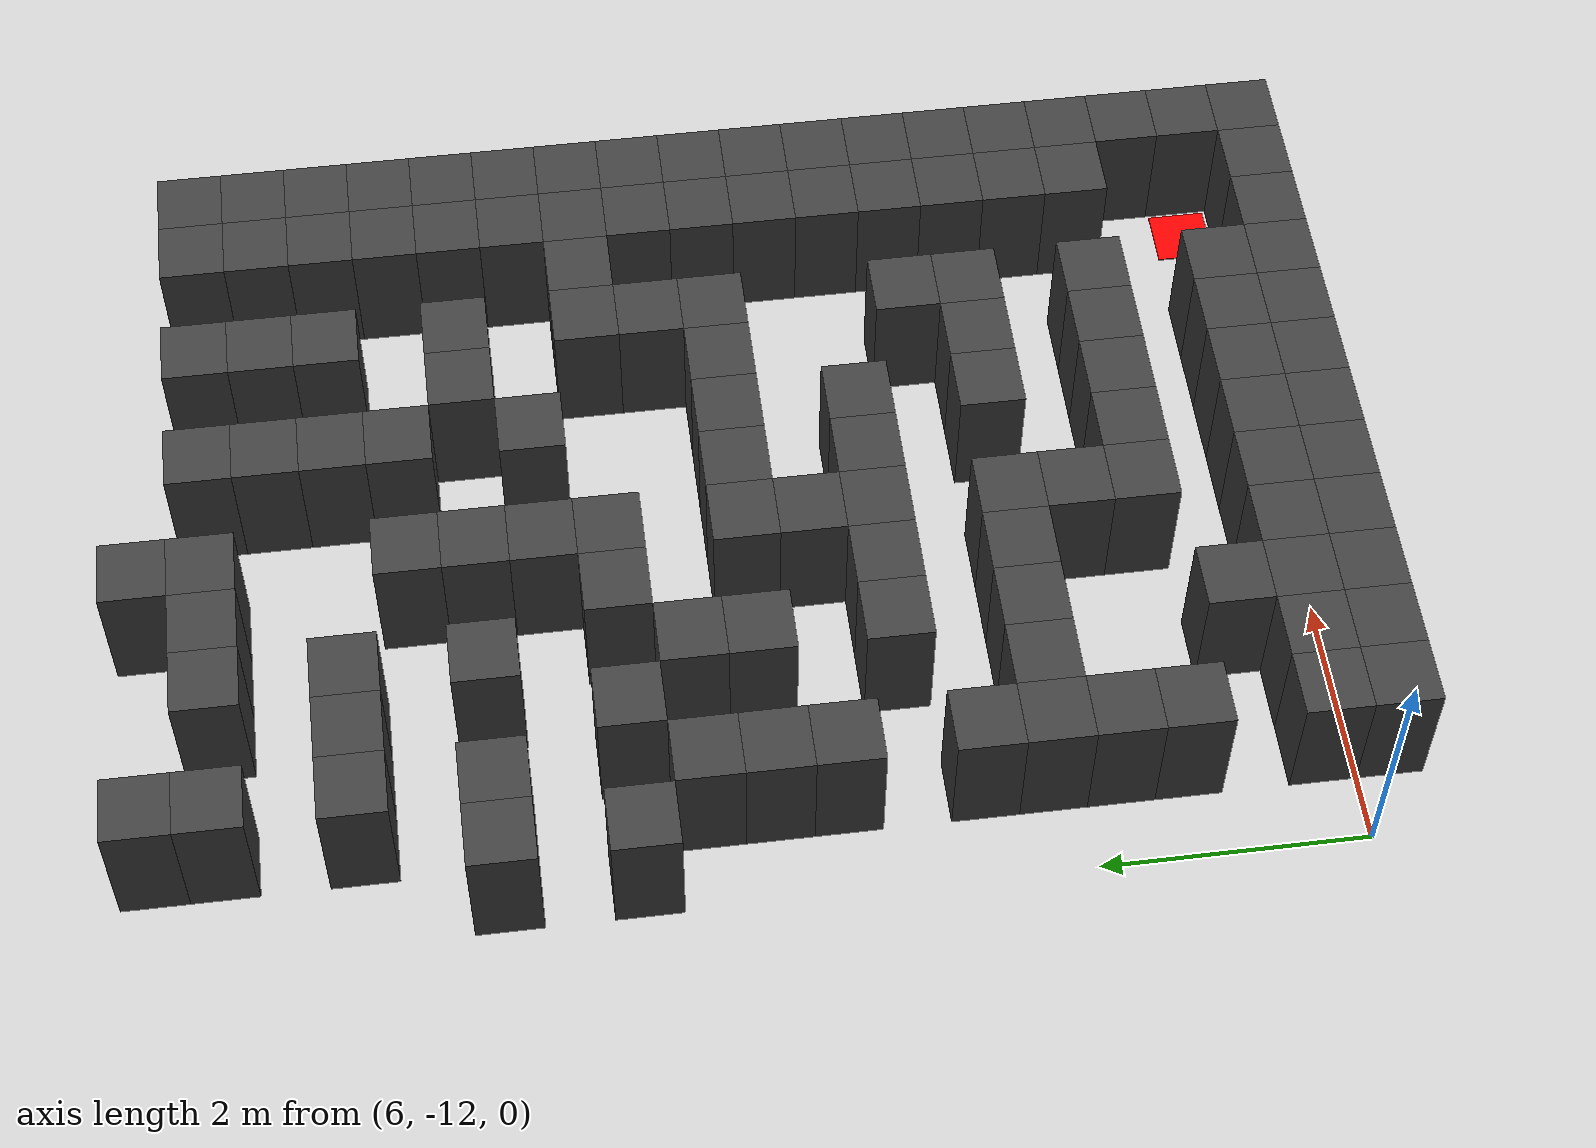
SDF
<sdf version="1.7">
 <world name="map_15497">
  <model name="ground_plane">
   <static>true</static>
   <link name="link">
    <collision name="collision">
     <geometry><plane><normal>0 0 1</normal><size>200 200</size></plane></geometry>
    </collision>
    <visual name="visual">
     <geometry><plane><normal>0 0 1</normal><size>200 200</size></plane></geometry>
     <material><ambient>0.8 0.8 0.8 1</ambient><diffuse>0.8 0.8 0.8 1</diffuse></material>
    </visual>
   </link>
  </model>
  <model name="maze_environment">
   <static>true</static>
   <link name="wall_745">
    <pose>6.750 -3.250 0.500 0 0 0</pose>
    <collision name="col"><geometry><box><size>0.5 0.5 1.0</size></box></geometry></collision>
    <visual name="vis">
     <geometry><box><size>0.5 0.5 1.0</size></box></geometry>
     <material><ambient>0.15 0.15 0.15 1</ambient><diffuse>0.25 0.25 0.25 1</diffuse></material>
    </visual>
   </link>
   <link name="wall_746">
    <pose>8.750 -3.250 0.500 0 0 0</pose>
    <collision name="col"><geometry><box><size>0.5 0.5 1.0</size></box></geometry></collision>
    <visual name="vis">
     <geometry><box><size>0.5 0.5 1.0</size></box></geometry>
     <material><ambient>0.15 0.15 0.15 1</ambient><diffuse>0.25 0.25 0.25 1</diffuse></material>
    </visual>
   </link>
   <link name="wall_774">
    <pose>6.750 -3.750 0.500 0 0 0</pose>
    <collision name="col"><geometry><box><size>0.5 0.5 1.0</size></box></geometry></collision>
    <visual name="vis">
     <geometry><box><size>0.5 0.5 1.0</size></box></geometry>
     <material><ambient>0.15 0.15 0.15 1</ambient><diffuse>0.25 0.25 0.25 1</diffuse></material>
    </visual>
   </link>
   <link name="wall_775">
    <pose>7.750 -3.750 0.500 0 0 0</pose>
    <collision name="col"><geometry><box><size>0.5 0.5 1.0</size></box></geometry></collision>
    <visual name="vis">
     <geometry><box><size>0.5 0.5 1.0</size></box></geometry>
     <material><ambient>0.15 0.15 0.15 1</ambient><diffuse>0.25 0.25 0.25 1</diffuse></material>
    </visual>
   </link>
   <link name="wall_776">
    <pose>8.250 -3.750 0.500 0 0 0</pose>
    <collision name="col"><geometry><box><size>0.5 0.5 1.0</size></box></geometry></collision>
    <visual name="vis">
     <geometry><box><size>0.5 0.5 1.0</size></box></geometry>
     <material><ambient>0.15 0.15 0.15 1</ambient><diffuse>0.25 0.25 0.25 1</diffuse></material>
    </visual>
   </link>
   <link name="wall_777">
    <pose>8.750 -3.750 0.500 0 0 0</pose>
    <collision name="col"><geometry><box><size>0.5 0.5 1.0</size></box></geometry></collision>
    <visual name="vis">
     <geometry><box><size>0.5 0.5 1.0</size></box></geometry>
     <material><ambient>0.15 0.15 0.15 1</ambient><diffuse>0.25 0.25 0.25 1</diffuse></material>
    </visual>
   </link>
   <link name="wall_778">
    <pose>9.750 -3.750 0.500 0 0 0</pose>
    <collision name="col"><geometry><box><size>0.5 0.5 1.0</size></box></geometry></collision>
    <visual name="vis">
     <geometry><box><size>0.5 0.5 1.0</size></box></geometry>
     <material><ambient>0.15 0.15 0.15 1</ambient><diffuse>0.25 0.25 0.25 1</diffuse></material>
    </visual>
   </link>
   <link name="wall_779">
    <pose>10.750 -3.750 0.500 0 0 0</pose>
    <collision name="col"><geometry><box><size>0.5 0.5 1.0</size></box></geometry></collision>
    <visual name="vis">
     <geometry><box><size>0.5 0.5 1.0</size></box></geometry>
     <material><ambient>0.15 0.15 0.15 1</ambient><diffuse>0.25 0.25 0.25 1</diffuse></material>
    </visual>
   </link>
   <link name="wall_780">
    <pose>11.750 -3.750 0.500 0 0 0</pose>
    <collision name="col"><geometry><box><size>0.5 0.5 1.0</size></box></geometry></collision>
    <visual name="vis">
     <geometry><box><size>0.5 0.5 1.0</size></box></geometry>
     <material><ambient>0.15 0.15 0.15 1</ambient><diffuse>0.25 0.25 0.25 1</diffuse></material>
    </visual>
   </link>
   <link name="wall_781">
    <pose>12.250 -3.750 0.500 0 0 0</pose>
    <collision name="col"><geometry><box><size>0.5 0.5 1.0</size></box></geometry></collision>
    <visual name="vis">
     <geometry><box><size>0.5 0.5 1.0</size></box></geometry>
     <material><ambient>0.15 0.15 0.15 1</ambient><diffuse>0.25 0.25 0.25 1</diffuse></material>
    </visual>
   </link>
   <link name="wall_791">
    <pose>9.750 -4.250 0.500 0 0 0</pose>
    <collision name="col"><geometry><box><size>0.5 0.5 1.0</size></box></geometry></collision>
    <visual name="vis">
     <geometry><box><size>0.5 0.5 1.0</size></box></geometry>
     <material><ambient>0.15 0.15 0.15 1</ambient><diffuse>0.25 0.25 0.25 1</diffuse></material>
    </visual>
   </link>
   <link name="wall_792">
    <pose>10.750 -4.250 0.500 0 0 0</pose>
    <collision name="col"><geometry><box><size>0.5 0.5 1.0</size></box></geometry></collision>
    <visual name="vis">
     <geometry><box><size>0.5 0.5 1.0</size></box></geometry>
     <material><ambient>0.15 0.15 0.15 1</ambient><diffuse>0.25 0.25 0.25 1</diffuse></material>
    </visual>
   </link>
   <link name="wall_793">
    <pose>11.750 -4.250 0.500 0 0 0</pose>
    <collision name="col"><geometry><box><size>0.5 0.5 1.0</size></box></geometry></collision>
    <visual name="vis">
     <geometry><box><size>0.5 0.5 1.0</size></box></geometry>
     <material><ambient>0.15 0.15 0.15 1</ambient><diffuse>0.25 0.25 0.25 1</diffuse></material>
    </visual>
   </link>
   <link name="wall_794">
    <pose>12.250 -4.250 0.500 0 0 0</pose>
    <collision name="col"><geometry><box><size>0.5 0.5 1.0</size></box></geometry></collision>
    <visual name="vis">
     <geometry><box><size>0.5 0.5 1.0</size></box></geometry>
     <material><ambient>0.15 0.15 0.15 1</ambient><diffuse>0.25 0.25 0.25 1</diffuse></material>
    </visual>
   </link>
   <link name="wall_819">
    <pose>6.750 -4.750 0.500 0 0 0</pose>
    <collision name="col"><geometry><box><size>0.5 0.5 1.0</size></box></geometry></collision>
    <visual name="vis">
     <geometry><box><size>0.5 0.5 1.0</size></box></geometry>
     <material><ambient>0.15 0.15 0.15 1</ambient><diffuse>0.25 0.25 0.25 1</diffuse></material>
    </visual>
   </link>
   <link name="wall_820">
    <pose>7.250 -4.750 0.500 0 0 0</pose>
    <collision name="col"><geometry><box><size>0.5 0.5 1.0</size></box></geometry></collision>
    <visual name="vis">
     <geometry><box><size>0.5 0.5 1.0</size></box></geometry>
     <material><ambient>0.15 0.15 0.15 1</ambient><diffuse>0.25 0.25 0.25 1</diffuse></material>
    </visual>
   </link>
   <link name="wall_821">
    <pose>7.750 -4.750 0.500 0 0 0</pose>
    <collision name="col"><geometry><box><size>0.5 0.5 1.0</size></box></geometry></collision>
    <visual name="vis">
     <geometry><box><size>0.5 0.5 1.0</size></box></geometry>
     <material><ambient>0.15 0.15 0.15 1</ambient><diffuse>0.25 0.25 0.25 1</diffuse></material>
    </visual>
   </link>
   <link name="wall_822">
    <pose>9.750 -4.750 0.500 0 0 0</pose>
    <collision name="col"><geometry><box><size>0.5 0.5 1.0</size></box></geometry></collision>
    <visual name="vis">
     <geometry><box><size>0.5 0.5 1.0</size></box></geometry>
     <material><ambient>0.15 0.15 0.15 1</ambient><diffuse>0.25 0.25 0.25 1</diffuse></material>
    </visual>
   </link>
   <link name="wall_823">
    <pose>10.750 -4.750 0.500 0 0 0</pose>
    <collision name="col"><geometry><box><size>0.5 0.5 1.0</size></box></geometry></collision>
    <visual name="vis">
     <geometry><box><size>0.5 0.5 1.0</size></box></geometry>
     <material><ambient>0.15 0.15 0.15 1</ambient><diffuse>0.25 0.25 0.25 1</diffuse></material>
    </visual>
   </link>
   <link name="wall_824">
    <pose>11.750 -4.750 0.500 0 0 0</pose>
    <collision name="col"><geometry><box><size>0.5 0.5 1.0</size></box></geometry></collision>
    <visual name="vis">
     <geometry><box><size>0.5 0.5 1.0</size></box></geometry>
     <material><ambient>0.15 0.15 0.15 1</ambient><diffuse>0.25 0.25 0.25 1</diffuse></material>
    </visual>
   </link>
   <link name="wall_825">
    <pose>12.250 -4.750 0.500 0 0 0</pose>
    <collision name="col"><geometry><box><size>0.5 0.5 1.0</size></box></geometry></collision>
    <visual name="vis">
     <geometry><box><size>0.5 0.5 1.0</size></box></geometry>
     <material><ambient>0.15 0.15 0.15 1</ambient><diffuse>0.25 0.25 0.25 1</diffuse></material>
    </visual>
   </link>
   <link name="wall_834">
    <pose>8.750 -5.250 0.500 0 0 0</pose>
    <collision name="col"><geometry><box><size>0.5 0.5 1.0</size></box></geometry></collision>
    <visual name="vis">
     <geometry><box><size>0.5 0.5 1.0</size></box></geometry>
     <material><ambient>0.15 0.15 0.15 1</ambient><diffuse>0.25 0.25 0.25 1</diffuse></material>
    </visual>
   </link>
   <link name="wall_835">
    <pose>9.750 -5.250 0.500 0 0 0</pose>
    <collision name="col"><geometry><box><size>0.5 0.5 1.0</size></box></geometry></collision>
    <visual name="vis">
     <geometry><box><size>0.5 0.5 1.0</size></box></geometry>
     <material><ambient>0.15 0.15 0.15 1</ambient><diffuse>0.25 0.25 0.25 1</diffuse></material>
    </visual>
   </link>
   <link name="wall_836">
    <pose>11.750 -5.250 0.500 0 0 0</pose>
    <collision name="col"><geometry><box><size>0.5 0.5 1.0</size></box></geometry></collision>
    <visual name="vis">
     <geometry><box><size>0.5 0.5 1.0</size></box></geometry>
     <material><ambient>0.15 0.15 0.15 1</ambient><diffuse>0.25 0.25 0.25 1</diffuse></material>
    </visual>
   </link>
   <link name="wall_837">
    <pose>12.250 -5.250 0.500 0 0 0</pose>
    <collision name="col"><geometry><box><size>0.5 0.5 1.0</size></box></geometry></collision>
    <visual name="vis">
     <geometry><box><size>0.5 0.5 1.0</size></box></geometry>
     <material><ambient>0.15 0.15 0.15 1</ambient><diffuse>0.25 0.25 0.25 1</diffuse></material>
    </visual>
   </link>
   <link name="wall_862">
    <pose>6.250 -5.750 0.500 0 0 0</pose>
    <collision name="col"><geometry><box><size>0.5 0.5 1.0</size></box></geometry></collision>
    <visual name="vis">
     <geometry><box><size>0.5 0.5 1.0</size></box></geometry>
     <material><ambient>0.15 0.15 0.15 1</ambient><diffuse>0.25 0.25 0.25 1</diffuse></material>
    </visual>
   </link>
   <link name="wall_863">
    <pose>6.750 -5.750 0.500 0 0 0</pose>
    <collision name="col"><geometry><box><size>0.5 0.5 1.0</size></box></geometry></collision>
    <visual name="vis">
     <geometry><box><size>0.5 0.5 1.0</size></box></geometry>
     <material><ambient>0.15 0.15 0.15 1</ambient><diffuse>0.25 0.25 0.25 1</diffuse></material>
    </visual>
   </link>
   <link name="wall_864">
    <pose>7.750 -5.750 0.500 0 0 0</pose>
    <collision name="col"><geometry><box><size>0.5 0.5 1.0</size></box></geometry></collision>
    <visual name="vis">
     <geometry><box><size>0.5 0.5 1.0</size></box></geometry>
     <material><ambient>0.15 0.15 0.15 1</ambient><diffuse>0.25 0.25 0.25 1</diffuse></material>
    </visual>
   </link>
   <link name="wall_865">
    <pose>8.750 -5.750 0.500 0 0 0</pose>
    <collision name="col"><geometry><box><size>0.5 0.5 1.0</size></box></geometry></collision>
    <visual name="vis">
     <geometry><box><size>0.5 0.5 1.0</size></box></geometry>
     <material><ambient>0.15 0.15 0.15 1</ambient><diffuse>0.25 0.25 0.25 1</diffuse></material>
    </visual>
   </link>
   <link name="wall_866">
    <pose>10.250 -5.750 0.500 0 0 0</pose>
    <collision name="col"><geometry><box><size>0.5 0.5 1.0</size></box></geometry></collision>
    <visual name="vis">
     <geometry><box><size>0.5 0.5 1.0</size></box></geometry>
     <material><ambient>0.15 0.15 0.15 1</ambient><diffuse>0.25 0.25 0.25 1</diffuse></material>
    </visual>
   </link>
   <link name="wall_867">
    <pose>10.750 -5.750 0.500 0 0 0</pose>
    <collision name="col"><geometry><box><size>0.5 0.5 1.0</size></box></geometry></collision>
    <visual name="vis">
     <geometry><box><size>0.5 0.5 1.0</size></box></geometry>
     <material><ambient>0.15 0.15 0.15 1</ambient><diffuse>0.25 0.25 0.25 1</diffuse></material>
    </visual>
   </link>
   <link name="wall_868">
    <pose>11.750 -5.750 0.500 0 0 0</pose>
    <collision name="col"><geometry><box><size>0.5 0.5 1.0</size></box></geometry></collision>
    <visual name="vis">
     <geometry><box><size>0.5 0.5 1.0</size></box></geometry>
     <material><ambient>0.15 0.15 0.15 1</ambient><diffuse>0.25 0.25 0.25 1</diffuse></material>
    </visual>
   </link>
   <link name="wall_869">
    <pose>12.250 -5.750 0.500 0 0 0</pose>
    <collision name="col"><geometry><box><size>0.5 0.5 1.0</size></box></geometry></collision>
    <visual name="vis">
     <geometry><box><size>0.5 0.5 1.0</size></box></geometry>
     <material><ambient>0.15 0.15 0.15 1</ambient><diffuse>0.25 0.25 0.25 1</diffuse></material>
    </visual>
   </link>
   <link name="wall_880">
    <pose>8.750 -6.250 0.500 0 0 0</pose>
    <collision name="col"><geometry><box><size>0.5 0.5 1.0</size></box></geometry></collision>
    <visual name="vis">
     <geometry><box><size>0.5 0.5 1.0</size></box></geometry>
     <material><ambient>0.15 0.15 0.15 1</ambient><diffuse>0.25 0.25 0.25 1</diffuse></material>
    </visual>
   </link>
   <link name="wall_881">
    <pose>9.750 -6.250 0.500 0 0 0</pose>
    <collision name="col"><geometry><box><size>0.5 0.5 1.0</size></box></geometry></collision>
    <visual name="vis">
     <geometry><box><size>0.5 0.5 1.0</size></box></geometry>
     <material><ambient>0.15 0.15 0.15 1</ambient><diffuse>0.25 0.25 0.25 1</diffuse></material>
    </visual>
   </link>
   <link name="wall_882">
    <pose>11.750 -6.250 0.500 0 0 0</pose>
    <collision name="col"><geometry><box><size>0.5 0.5 1.0</size></box></geometry></collision>
    <visual name="vis">
     <geometry><box><size>0.5 0.5 1.0</size></box></geometry>
     <material><ambient>0.15 0.15 0.15 1</ambient><diffuse>0.25 0.25 0.25 1</diffuse></material>
    </visual>
   </link>
   <link name="wall_883">
    <pose>12.250 -6.250 0.500 0 0 0</pose>
    <collision name="col"><geometry><box><size>0.5 0.5 1.0</size></box></geometry></collision>
    <visual name="vis">
     <geometry><box><size>0.5 0.5 1.0</size></box></geometry>
     <material><ambient>0.15 0.15 0.15 1</ambient><diffuse>0.25 0.25 0.25 1</diffuse></material>
    </visual>
   </link>
   <link name="wall_907">
    <pose>6.250 -6.750 0.500 0 0 0</pose>
    <collision name="col"><geometry><box><size>0.5 0.5 1.0</size></box></geometry></collision>
    <visual name="vis">
     <geometry><box><size>0.5 0.5 1.0</size></box></geometry>
     <material><ambient>0.15 0.15 0.15 1</ambient><diffuse>0.25 0.25 0.25 1</diffuse></material>
    </visual>
   </link>
   <link name="wall_908">
    <pose>7.250 -6.750 0.500 0 0 0</pose>
    <collision name="col"><geometry><box><size>0.5 0.5 1.0</size></box></geometry></collision>
    <visual name="vis">
     <geometry><box><size>0.5 0.5 1.0</size></box></geometry>
     <material><ambient>0.15 0.15 0.15 1</ambient><diffuse>0.25 0.25 0.25 1</diffuse></material>
    </visual>
   </link>
   <link name="wall_909">
    <pose>8.250 -6.750 0.500 0 0 0</pose>
    <collision name="col"><geometry><box><size>0.5 0.5 1.0</size></box></geometry></collision>
    <visual name="vis">
     <geometry><box><size>0.5 0.5 1.0</size></box></geometry>
     <material><ambient>0.15 0.15 0.15 1</ambient><diffuse>0.25 0.25 0.25 1</diffuse></material>
    </visual>
   </link>
   <link name="wall_910">
    <pose>8.750 -6.750 0.500 0 0 0</pose>
    <collision name="col"><geometry><box><size>0.5 0.5 1.0</size></box></geometry></collision>
    <visual name="vis">
     <geometry><box><size>0.5 0.5 1.0</size></box></geometry>
     <material><ambient>0.15 0.15 0.15 1</ambient><diffuse>0.25 0.25 0.25 1</diffuse></material>
    </visual>
   </link>
   <link name="wall_911">
    <pose>10.750 -6.750 0.500 0 0 0</pose>
    <collision name="col"><geometry><box><size>0.5 0.5 1.0</size></box></geometry></collision>
    <visual name="vis">
     <geometry><box><size>0.5 0.5 1.0</size></box></geometry>
     <material><ambient>0.15 0.15 0.15 1</ambient><diffuse>0.25 0.25 0.25 1</diffuse></material>
    </visual>
   </link>
   <link name="wall_912">
    <pose>11.250 -6.750 0.500 0 0 0</pose>
    <collision name="col"><geometry><box><size>0.5 0.5 1.0</size></box></geometry></collision>
    <visual name="vis">
     <geometry><box><size>0.5 0.5 1.0</size></box></geometry>
     <material><ambient>0.15 0.15 0.15 1</ambient><diffuse>0.25 0.25 0.25 1</diffuse></material>
    </visual>
   </link>
   <link name="wall_913">
    <pose>11.750 -6.750 0.500 0 0 0</pose>
    <collision name="col"><geometry><box><size>0.5 0.5 1.0</size></box></geometry></collision>
    <visual name="vis">
     <geometry><box><size>0.5 0.5 1.0</size></box></geometry>
     <material><ambient>0.15 0.15 0.15 1</ambient><diffuse>0.25 0.25 0.25 1</diffuse></material>
    </visual>
   </link>
   <link name="wall_914">
    <pose>12.250 -6.750 0.500 0 0 0</pose>
    <collision name="col"><geometry><box><size>0.5 0.5 1.0</size></box></geometry></collision>
    <visual name="vis">
     <geometry><box><size>0.5 0.5 1.0</size></box></geometry>
     <material><ambient>0.15 0.15 0.15 1</ambient><diffuse>0.25 0.25 0.25 1</diffuse></material>
    </visual>
   </link>
   <link name="wall_926">
    <pose>6.750 -7.250 0.500 0 0 0</pose>
    <collision name="col"><geometry><box><size>0.5 0.5 1.0</size></box></geometry></collision>
    <visual name="vis">
     <geometry><box><size>0.5 0.5 1.0</size></box></geometry>
     <material><ambient>0.15 0.15 0.15 1</ambient><diffuse>0.25 0.25 0.25 1</diffuse></material>
    </visual>
   </link>
   <link name="wall_927">
    <pose>7.750 -7.250 0.500 0 0 0</pose>
    <collision name="col"><geometry><box><size>0.5 0.5 1.0</size></box></geometry></collision>
    <visual name="vis">
     <geometry><box><size>0.5 0.5 1.0</size></box></geometry>
     <material><ambient>0.15 0.15 0.15 1</ambient><diffuse>0.25 0.25 0.25 1</diffuse></material>
    </visual>
   </link>
   <link name="wall_928">
    <pose>10.750 -7.250 0.500 0 0 0</pose>
    <collision name="col"><geometry><box><size>0.5 0.5 1.0</size></box></geometry></collision>
    <visual name="vis">
     <geometry><box><size>0.5 0.5 1.0</size></box></geometry>
     <material><ambient>0.15 0.15 0.15 1</ambient><diffuse>0.25 0.25 0.25 1</diffuse></material>
    </visual>
   </link>
   <link name="wall_929">
    <pose>11.750 -7.250 0.500 0 0 0</pose>
    <collision name="col"><geometry><box><size>0.5 0.5 1.0</size></box></geometry></collision>
    <visual name="vis">
     <geometry><box><size>0.5 0.5 1.0</size></box></geometry>
     <material><ambient>0.15 0.15 0.15 1</ambient><diffuse>0.25 0.25 0.25 1</diffuse></material>
    </visual>
   </link>
   <link name="wall_930">
    <pose>12.250 -7.250 0.500 0 0 0</pose>
    <collision name="col"><geometry><box><size>0.5 0.5 1.0</size></box></geometry></collision>
    <visual name="vis">
     <geometry><box><size>0.5 0.5 1.0</size></box></geometry>
     <material><ambient>0.15 0.15 0.15 1</ambient><diffuse>0.25 0.25 0.25 1</diffuse></material>
    </visual>
   </link>
   <link name="wall_954">
    <pose>6.750 -7.750 0.500 0 0 0</pose>
    <collision name="col"><geometry><box><size>0.5 0.5 1.0</size></box></geometry></collision>
    <visual name="vis">
     <geometry><box><size>0.5 0.5 1.0</size></box></geometry>
     <material><ambient>0.15 0.15 0.15 1</ambient><diffuse>0.25 0.25 0.25 1</diffuse></material>
    </visual>
   </link>
   <link name="wall_955">
    <pose>7.750 -7.750 0.500 0 0 0</pose>
    <collision name="col"><geometry><box><size>0.5 0.5 1.0</size></box></geometry></collision>
    <visual name="vis">
     <geometry><box><size>0.5 0.5 1.0</size></box></geometry>
     <material><ambient>0.15 0.15 0.15 1</ambient><diffuse>0.25 0.25 0.25 1</diffuse></material>
    </visual>
   </link>
   <link name="wall_956">
    <pose>8.750 -7.750 0.500 0 0 0</pose>
    <collision name="col"><geometry><box><size>0.5 0.5 1.0</size></box></geometry></collision>
    <visual name="vis">
     <geometry><box><size>0.5 0.5 1.0</size></box></geometry>
     <material><ambient>0.15 0.15 0.15 1</ambient><diffuse>0.25 0.25 0.25 1</diffuse></material>
    </visual>
   </link>
   <link name="wall_957">
    <pose>9.250 -7.750 0.500 0 0 0</pose>
    <collision name="col"><geometry><box><size>0.5 0.5 1.0</size></box></geometry></collision>
    <visual name="vis">
     <geometry><box><size>0.5 0.5 1.0</size></box></geometry>
     <material><ambient>0.15 0.15 0.15 1</ambient><diffuse>0.25 0.25 0.25 1</diffuse></material>
    </visual>
   </link>
   <link name="wall_958">
    <pose>9.750 -7.750 0.500 0 0 0</pose>
    <collision name="col"><geometry><box><size>0.5 0.5 1.0</size></box></geometry></collision>
    <visual name="vis">
     <geometry><box><size>0.5 0.5 1.0</size></box></geometry>
     <material><ambient>0.15 0.15 0.15 1</ambient><diffuse>0.25 0.25 0.25 1</diffuse></material>
    </visual>
   </link>
   <link name="wall_959">
    <pose>10.250 -7.750 0.500 0 0 0</pose>
    <collision name="col"><geometry><box><size>0.5 0.5 1.0</size></box></geometry></collision>
    <visual name="vis">
     <geometry><box><size>0.5 0.5 1.0</size></box></geometry>
     <material><ambient>0.15 0.15 0.15 1</ambient><diffuse>0.25 0.25 0.25 1</diffuse></material>
    </visual>
   </link>
   <link name="wall_960">
    <pose>10.750 -7.750 0.500 0 0 0</pose>
    <collision name="col"><geometry><box><size>0.5 0.5 1.0</size></box></geometry></collision>
    <visual name="vis">
     <geometry><box><size>0.5 0.5 1.0</size></box></geometry>
     <material><ambient>0.15 0.15 0.15 1</ambient><diffuse>0.25 0.25 0.25 1</diffuse></material>
    </visual>
   </link>
   <link name="wall_961">
    <pose>11.750 -7.750 0.500 0 0 0</pose>
    <collision name="col"><geometry><box><size>0.5 0.5 1.0</size></box></geometry></collision>
    <visual name="vis">
     <geometry><box><size>0.5 0.5 1.0</size></box></geometry>
     <material><ambient>0.15 0.15 0.15 1</ambient><diffuse>0.25 0.25 0.25 1</diffuse></material>
    </visual>
   </link>
   <link name="wall_962">
    <pose>12.250 -7.750 0.500 0 0 0</pose>
    <collision name="col"><geometry><box><size>0.5 0.5 1.0</size></box></geometry></collision>
    <visual name="vis">
     <geometry><box><size>0.5 0.5 1.0</size></box></geometry>
     <material><ambient>0.15 0.15 0.15 1</ambient><diffuse>0.25 0.25 0.25 1</diffuse></material>
    </visual>
   </link>
   <link name="wall_974">
    <pose>6.750 -8.250 0.500 0 0 0</pose>
    <collision name="col"><geometry><box><size>0.5 0.5 1.0</size></box></geometry></collision>
    <visual name="vis">
     <geometry><box><size>0.5 0.5 1.0</size></box></geometry>
     <material><ambient>0.15 0.15 0.15 1</ambient><diffuse>0.25 0.25 0.25 1</diffuse></material>
    </visual>
   </link>
   <link name="wall_975">
    <pose>8.750 -8.250 0.500 0 0 0</pose>
    <collision name="col"><geometry><box><size>0.5 0.5 1.0</size></box></geometry></collision>
    <visual name="vis">
     <geometry><box><size>0.5 0.5 1.0</size></box></geometry>
     <material><ambient>0.15 0.15 0.15 1</ambient><diffuse>0.25 0.25 0.25 1</diffuse></material>
    </visual>
   </link>
   <link name="wall_976">
    <pose>11.750 -8.250 0.500 0 0 0</pose>
    <collision name="col"><geometry><box><size>0.5 0.5 1.0</size></box></geometry></collision>
    <visual name="vis">
     <geometry><box><size>0.5 0.5 1.0</size></box></geometry>
     <material><ambient>0.15 0.15 0.15 1</ambient><diffuse>0.25 0.25 0.25 1</diffuse></material>
    </visual>
   </link>
   <link name="wall_977">
    <pose>12.250 -8.250 0.500 0 0 0</pose>
    <collision name="col"><geometry><box><size>0.5 0.5 1.0</size></box></geometry></collision>
    <visual name="vis">
     <geometry><box><size>0.5 0.5 1.0</size></box></geometry>
     <material><ambient>0.15 0.15 0.15 1</ambient><diffuse>0.25 0.25 0.25 1</diffuse></material>
    </visual>
   </link>
   <link name="wall_1003">
    <pose>7.750 -8.750 0.500 0 0 0</pose>
    <collision name="col"><geometry><box><size>0.5 0.5 1.0</size></box></geometry></collision>
    <visual name="vis">
     <geometry><box><size>0.5 0.5 1.0</size></box></geometry>
     <material><ambient>0.15 0.15 0.15 1</ambient><diffuse>0.25 0.25 0.25 1</diffuse></material>
    </visual>
   </link>
   <link name="wall_1004">
    <pose>8.250 -8.750 0.500 0 0 0</pose>
    <collision name="col"><geometry><box><size>0.5 0.5 1.0</size></box></geometry></collision>
    <visual name="vis">
     <geometry><box><size>0.5 0.5 1.0</size></box></geometry>
     <material><ambient>0.15 0.15 0.15 1</ambient><diffuse>0.25 0.25 0.25 1</diffuse></material>
    </visual>
   </link>
   <link name="wall_1005">
    <pose>8.750 -8.750 0.500 0 0 0</pose>
    <collision name="col"><geometry><box><size>0.5 0.5 1.0</size></box></geometry></collision>
    <visual name="vis">
     <geometry><box><size>0.5 0.5 1.0</size></box></geometry>
     <material><ambient>0.15 0.15 0.15 1</ambient><diffuse>0.25 0.25 0.25 1</diffuse></material>
    </visual>
   </link>
   <link name="wall_1006">
    <pose>9.250 -8.750 0.500 0 0 0</pose>
    <collision name="col"><geometry><box><size>0.5 0.5 1.0</size></box></geometry></collision>
    <visual name="vis">
     <geometry><box><size>0.5 0.5 1.0</size></box></geometry>
     <material><ambient>0.15 0.15 0.15 1</ambient><diffuse>0.25 0.25 0.25 1</diffuse></material>
    </visual>
   </link>
   <link name="wall_1007">
    <pose>9.750 -8.750 0.500 0 0 0</pose>
    <collision name="col"><geometry><box><size>0.5 0.5 1.0</size></box></geometry></collision>
    <visual name="vis">
     <geometry><box><size>0.5 0.5 1.0</size></box></geometry>
     <material><ambient>0.15 0.15 0.15 1</ambient><diffuse>0.25 0.25 0.25 1</diffuse></material>
    </visual>
   </link>
   <link name="wall_1008">
    <pose>11.750 -8.750 0.500 0 0 0</pose>
    <collision name="col"><geometry><box><size>0.5 0.5 1.0</size></box></geometry></collision>
    <visual name="vis">
     <geometry><box><size>0.5 0.5 1.0</size></box></geometry>
     <material><ambient>0.15 0.15 0.15 1</ambient><diffuse>0.25 0.25 0.25 1</diffuse></material>
    </visual>
   </link>
   <link name="wall_1009">
    <pose>12.250 -8.750 0.500 0 0 0</pose>
    <collision name="col"><geometry><box><size>0.5 0.5 1.0</size></box></geometry></collision>
    <visual name="vis">
     <geometry><box><size>0.5 0.5 1.0</size></box></geometry>
     <material><ambient>0.15 0.15 0.15 1</ambient><diffuse>0.25 0.25 0.25 1</diffuse></material>
    </visual>
   </link>
   <link name="wall_1019">
    <pose>6.750 -9.250 0.500 0 0 0</pose>
    <collision name="col"><geometry><box><size>0.5 0.5 1.0</size></box></geometry></collision>
    <visual name="vis">
     <geometry><box><size>0.5 0.5 1.0</size></box></geometry>
     <material><ambient>0.15 0.15 0.15 1</ambient><diffuse>0.25 0.25 0.25 1</diffuse></material>
    </visual>
   </link>
   <link name="wall_1020">
    <pose>10.750 -9.250 0.500 0 0 0</pose>
    <collision name="col"><geometry><box><size>0.5 0.5 1.0</size></box></geometry></collision>
    <visual name="vis">
     <geometry><box><size>0.5 0.5 1.0</size></box></geometry>
     <material><ambient>0.15 0.15 0.15 1</ambient><diffuse>0.25 0.25 0.25 1</diffuse></material>
    </visual>
   </link>
   <link name="wall_1021">
    <pose>11.750 -9.250 0.500 0 0 0</pose>
    <collision name="col"><geometry><box><size>0.5 0.5 1.0</size></box></geometry></collision>
    <visual name="vis">
     <geometry><box><size>0.5 0.5 1.0</size></box></geometry>
     <material><ambient>0.15 0.15 0.15 1</ambient><diffuse>0.25 0.25 0.25 1</diffuse></material>
    </visual>
   </link>
   <link name="wall_1022">
    <pose>12.250 -9.250 0.500 0 0 0</pose>
    <collision name="col"><geometry><box><size>0.5 0.5 1.0</size></box></geometry></collision>
    <visual name="vis">
     <geometry><box><size>0.5 0.5 1.0</size></box></geometry>
     <material><ambient>0.15 0.15 0.15 1</ambient><diffuse>0.25 0.25 0.25 1</diffuse></material>
    </visual>
   </link>
   <link name="wall_1053">
    <pose>6.750 -9.750 0.500 0 0 0</pose>
    <collision name="col"><geometry><box><size>0.5 0.5 1.0</size></box></geometry></collision>
    <visual name="vis">
     <geometry><box><size>0.5 0.5 1.0</size></box></geometry>
     <material><ambient>0.15 0.15 0.15 1</ambient><diffuse>0.25 0.25 0.25 1</diffuse></material>
    </visual>
   </link>
   <link name="wall_1054">
    <pose>7.250 -9.750 0.500 0 0 0</pose>
    <collision name="col"><geometry><box><size>0.5 0.5 1.0</size></box></geometry></collision>
    <visual name="vis">
     <geometry><box><size>0.5 0.5 1.0</size></box></geometry>
     <material><ambient>0.15 0.15 0.15 1</ambient><diffuse>0.25 0.25 0.25 1</diffuse></material>
    </visual>
   </link>
   <link name="wall_1055">
    <pose>7.750 -9.750 0.500 0 0 0</pose>
    <collision name="col"><geometry><box><size>0.5 0.5 1.0</size></box></geometry></collision>
    <visual name="vis">
     <geometry><box><size>0.5 0.5 1.0</size></box></geometry>
     <material><ambient>0.15 0.15 0.15 1</ambient><diffuse>0.25 0.25 0.25 1</diffuse></material>
    </visual>
   </link>
   <link name="wall_1056">
    <pose>8.250 -9.750 0.500 0 0 0</pose>
    <collision name="col"><geometry><box><size>0.5 0.5 1.0</size></box></geometry></collision>
    <visual name="vis">
     <geometry><box><size>0.5 0.5 1.0</size></box></geometry>
     <material><ambient>0.15 0.15 0.15 1</ambient><diffuse>0.25 0.25 0.25 1</diffuse></material>
    </visual>
   </link>
   <link name="wall_1057">
    <pose>8.750 -9.750 0.500 0 0 0</pose>
    <collision name="col"><geometry><box><size>0.5 0.5 1.0</size></box></geometry></collision>
    <visual name="vis">
     <geometry><box><size>0.5 0.5 1.0</size></box></geometry>
     <material><ambient>0.15 0.15 0.15 1</ambient><diffuse>0.25 0.25 0.25 1</diffuse></material>
    </visual>
   </link>
   <link name="wall_1058">
    <pose>9.750 -9.750 0.500 0 0 0</pose>
    <collision name="col"><geometry><box><size>0.5 0.5 1.0</size></box></geometry></collision>
    <visual name="vis">
     <geometry><box><size>0.5 0.5 1.0</size></box></geometry>
     <material><ambient>0.15 0.15 0.15 1</ambient><diffuse>0.25 0.25 0.25 1</diffuse></material>
    </visual>
   </link>
   <link name="wall_1059">
    <pose>10.250 -9.750 0.500 0 0 0</pose>
    <collision name="col"><geometry><box><size>0.5 0.5 1.0</size></box></geometry></collision>
    <visual name="vis">
     <geometry><box><size>0.5 0.5 1.0</size></box></geometry>
     <material><ambient>0.15 0.15 0.15 1</ambient><diffuse>0.25 0.25 0.25 1</diffuse></material>
    </visual>
   </link>
   <link name="wall_1060">
    <pose>10.750 -9.750 0.500 0 0 0</pose>
    <collision name="col"><geometry><box><size>0.5 0.5 1.0</size></box></geometry></collision>
    <visual name="vis">
     <geometry><box><size>0.5 0.5 1.0</size></box></geometry>
     <material><ambient>0.15 0.15 0.15 1</ambient><diffuse>0.25 0.25 0.25 1</diffuse></material>
    </visual>
   </link>
   <link name="wall_1061">
    <pose>11.750 -9.750 0.500 0 0 0</pose>
    <collision name="col"><geometry><box><size>0.5 0.5 1.0</size></box></geometry></collision>
    <visual name="vis">
     <geometry><box><size>0.5 0.5 1.0</size></box></geometry>
     <material><ambient>0.15 0.15 0.15 1</ambient><diffuse>0.25 0.25 0.25 1</diffuse></material>
    </visual>
   </link>
   <link name="wall_1062">
    <pose>12.250 -9.750 0.500 0 0 0</pose>
    <collision name="col"><geometry><box><size>0.5 0.5 1.0</size></box></geometry></collision>
    <visual name="vis">
     <geometry><box><size>0.5 0.5 1.0</size></box></geometry>
     <material><ambient>0.15 0.15 0.15 1</ambient><diffuse>0.25 0.25 0.25 1</diffuse></material>
    </visual>
   </link>
   <link name="wall_1071">
    <pose>6.750 -10.250 0.500 0 0 0</pose>
    <collision name="col"><geometry><box><size>0.5 0.5 1.0</size></box></geometry></collision>
    <visual name="vis">
     <geometry><box><size>0.5 0.5 1.0</size></box></geometry>
     <material><ambient>0.15 0.15 0.15 1</ambient><diffuse>0.25 0.25 0.25 1</diffuse></material>
    </visual>
   </link>
   <link name="wall_1072">
    <pose>8.750 -10.250 0.500 0 0 0</pose>
    <collision name="col"><geometry><box><size>0.5 0.5 1.0</size></box></geometry></collision>
    <visual name="vis">
     <geometry><box><size>0.5 0.5 1.0</size></box></geometry>
     <material><ambient>0.15 0.15 0.15 1</ambient><diffuse>0.25 0.25 0.25 1</diffuse></material>
    </visual>
   </link>
   <link name="wall_1073">
    <pose>11.750 -10.250 0.500 0 0 0</pose>
    <collision name="col"><geometry><box><size>0.5 0.5 1.0</size></box></geometry></collision>
    <visual name="vis">
     <geometry><box><size>0.5 0.5 1.0</size></box></geometry>
     <material><ambient>0.15 0.15 0.15 1</ambient><diffuse>0.25 0.25 0.25 1</diffuse></material>
    </visual>
   </link>
   <link name="wall_1074">
    <pose>12.250 -10.250 0.500 0 0 0</pose>
    <collision name="col"><geometry><box><size>0.5 0.5 1.0</size></box></geometry></collision>
    <visual name="vis">
     <geometry><box><size>0.5 0.5 1.0</size></box></geometry>
     <material><ambient>0.15 0.15 0.15 1</ambient><diffuse>0.25 0.25 0.25 1</diffuse></material>
    </visual>
   </link>
   <link name="wall_1097">
    <pose>6.750 -10.750 0.500 0 0 0</pose>
    <collision name="col"><geometry><box><size>0.5 0.5 1.0</size></box></geometry></collision>
    <visual name="vis">
     <geometry><box><size>0.5 0.5 1.0</size></box></geometry>
     <material><ambient>0.15 0.15 0.15 1</ambient><diffuse>0.25 0.25 0.25 1</diffuse></material>
    </visual>
   </link>
   <link name="wall_1098">
    <pose>8.750 -10.750 0.500 0 0 0</pose>
    <collision name="col"><geometry><box><size>0.5 0.5 1.0</size></box></geometry></collision>
    <visual name="vis">
     <geometry><box><size>0.5 0.5 1.0</size></box></geometry>
     <material><ambient>0.15 0.15 0.15 1</ambient><diffuse>0.25 0.25 0.25 1</diffuse></material>
    </visual>
   </link>
   <link name="wall_1099">
    <pose>9.250 -10.750 0.500 0 0 0</pose>
    <collision name="col"><geometry><box><size>0.5 0.5 1.0</size></box></geometry></collision>
    <visual name="vis">
     <geometry><box><size>0.5 0.5 1.0</size></box></geometry>
     <material><ambient>0.15 0.15 0.15 1</ambient><diffuse>0.25 0.25 0.25 1</diffuse></material>
    </visual>
   </link>
   <link name="wall_1100">
    <pose>9.750 -10.750 0.500 0 0 0</pose>
    <collision name="col"><geometry><box><size>0.5 0.5 1.0</size></box></geometry></collision>
    <visual name="vis">
     <geometry><box><size>0.5 0.5 1.0</size></box></geometry>
     <material><ambient>0.15 0.15 0.15 1</ambient><diffuse>0.25 0.25 0.25 1</diffuse></material>
    </visual>
   </link>
   <link name="wall_1101">
    <pose>10.250 -10.750 0.500 0 0 0</pose>
    <collision name="col"><geometry><box><size>0.5 0.5 1.0</size></box></geometry></collision>
    <visual name="vis">
     <geometry><box><size>0.5 0.5 1.0</size></box></geometry>
     <material><ambient>0.15 0.15 0.15 1</ambient><diffuse>0.25 0.25 0.25 1</diffuse></material>
    </visual>
   </link>
   <link name="wall_1102">
    <pose>10.750 -10.750 0.500 0 0 0</pose>
    <collision name="col"><geometry><box><size>0.5 0.5 1.0</size></box></geometry></collision>
    <visual name="vis">
     <geometry><box><size>0.5 0.5 1.0</size></box></geometry>
     <material><ambient>0.15 0.15 0.15 1</ambient><diffuse>0.25 0.25 0.25 1</diffuse></material>
    </visual>
   </link>
   <link name="wall_1103">
    <pose>11.750 -10.750 0.500 0 0 0</pose>
    <collision name="col"><geometry><box><size>0.5 0.5 1.0</size></box></geometry></collision>
    <visual name="vis">
     <geometry><box><size>0.5 0.5 1.0</size></box></geometry>
     <material><ambient>0.15 0.15 0.15 1</ambient><diffuse>0.25 0.25 0.25 1</diffuse></material>
    </visual>
   </link>
   <link name="wall_1104">
    <pose>12.250 -10.750 0.500 0 0 0</pose>
    <collision name="col"><geometry><box><size>0.5 0.5 1.0</size></box></geometry></collision>
    <visual name="vis">
     <geometry><box><size>0.5 0.5 1.0</size></box></geometry>
     <material><ambient>0.15 0.15 0.15 1</ambient><diffuse>0.25 0.25 0.25 1</diffuse></material>
    </visual>
   </link>
   <link name="wall_1110">
    <pose>7.750 -11.250 0.500 0 0 0</pose>
    <collision name="col"><geometry><box><size>0.5 0.5 1.0</size></box></geometry></collision>
    <visual name="vis">
     <geometry><box><size>0.5 0.5 1.0</size></box></geometry>
     <material><ambient>0.15 0.15 0.15 1</ambient><diffuse>0.25 0.25 0.25 1</diffuse></material>
    </visual>
   </link>
   <link name="wall_1111">
    <pose>12.250 -11.250 0.500 0 0 0</pose>
    <collision name="col"><geometry><box><size>0.5 0.5 1.0</size></box></geometry></collision>
    <visual name="vis">
     <geometry><box><size>0.5 0.5 1.0</size></box></geometry>
     <material><ambient>0.15 0.15 0.15 1</ambient><diffuse>0.25 0.25 0.25 1</diffuse></material>
    </visual>
   </link>
   <link name="wall_1150">
    <pose>6.750 -11.750 0.500 0 0 0</pose>
    <collision name="col"><geometry><box><size>0.5 0.5 1.0</size></box></geometry></collision>
    <visual name="vis">
     <geometry><box><size>0.5 0.5 1.0</size></box></geometry>
     <material><ambient>0.15 0.15 0.15 1</ambient><diffuse>0.25 0.25 0.25 1</diffuse></material>
    </visual>
   </link>
   <link name="wall_1151">
    <pose>7.250 -11.750 0.500 0 0 0</pose>
    <collision name="col"><geometry><box><size>0.5 0.5 1.0</size></box></geometry></collision>
    <visual name="vis">
     <geometry><box><size>0.5 0.5 1.0</size></box></geometry>
     <material><ambient>0.15 0.15 0.15 1</ambient><diffuse>0.25 0.25 0.25 1</diffuse></material>
    </visual>
   </link>
   <link name="wall_1152">
    <pose>7.750 -11.750 0.500 0 0 0</pose>
    <collision name="col"><geometry><box><size>0.5 0.5 1.0</size></box></geometry></collision>
    <visual name="vis">
     <geometry><box><size>0.5 0.5 1.0</size></box></geometry>
     <material><ambient>0.15 0.15 0.15 1</ambient><diffuse>0.25 0.25 0.25 1</diffuse></material>
    </visual>
   </link>
   <link name="wall_1153">
    <pose>8.250 -11.750 0.500 0 0 0</pose>
    <collision name="col"><geometry><box><size>0.5 0.5 1.0</size></box></geometry></collision>
    <visual name="vis">
     <geometry><box><size>0.5 0.5 1.0</size></box></geometry>
     <material><ambient>0.15 0.15 0.15 1</ambient><diffuse>0.25 0.25 0.25 1</diffuse></material>
    </visual>
   </link>
   <link name="wall_1154">
    <pose>8.750 -11.750 0.500 0 0 0</pose>
    <collision name="col"><geometry><box><size>0.5 0.5 1.0</size></box></geometry></collision>
    <visual name="vis">
     <geometry><box><size>0.5 0.5 1.0</size></box></geometry>
     <material><ambient>0.15 0.15 0.15 1</ambient><diffuse>0.25 0.25 0.25 1</diffuse></material>
    </visual>
   </link>
   <link name="wall_1155">
    <pose>9.250 -11.750 0.500 0 0 0</pose>
    <collision name="col"><geometry><box><size>0.5 0.5 1.0</size></box></geometry></collision>
    <visual name="vis">
     <geometry><box><size>0.5 0.5 1.0</size></box></geometry>
     <material><ambient>0.15 0.15 0.15 1</ambient><diffuse>0.25 0.25 0.25 1</diffuse></material>
    </visual>
   </link>
   <link name="wall_1156">
    <pose>9.750 -11.750 0.500 0 0 0</pose>
    <collision name="col"><geometry><box><size>0.5 0.5 1.0</size></box></geometry></collision>
    <visual name="vis">
     <geometry><box><size>0.5 0.5 1.0</size></box></geometry>
     <material><ambient>0.15 0.15 0.15 1</ambient><diffuse>0.25 0.25 0.25 1</diffuse></material>
    </visual>
   </link>
   <link name="wall_1157">
    <pose>10.250 -11.750 0.500 0 0 0</pose>
    <collision name="col"><geometry><box><size>0.5 0.5 1.0</size></box></geometry></collision>
    <visual name="vis">
     <geometry><box><size>0.5 0.5 1.0</size></box></geometry>
     <material><ambient>0.15 0.15 0.15 1</ambient><diffuse>0.25 0.25 0.25 1</diffuse></material>
    </visual>
   </link>
   <link name="wall_1158">
    <pose>10.750 -11.750 0.500 0 0 0</pose>
    <collision name="col"><geometry><box><size>0.5 0.5 1.0</size></box></geometry></collision>
    <visual name="vis">
     <geometry><box><size>0.5 0.5 1.0</size></box></geometry>
     <material><ambient>0.15 0.15 0.15 1</ambient><diffuse>0.25 0.25 0.25 1</diffuse></material>
    </visual>
   </link>
   <link name="wall_1159">
    <pose>12.250 -11.750 0.500 0 0 0</pose>
    <collision name="col"><geometry><box><size>0.5 0.5 1.0</size></box></geometry></collision>
    <visual name="vis">
     <geometry><box><size>0.5 0.5 1.0</size></box></geometry>
     <material><ambient>0.15 0.15 0.15 1</ambient><diffuse>0.25 0.25 0.25 1</diffuse></material>
    </visual>
   </link>
   <link name="wall_1198">
    <pose>6.750 -12.250 0.500 0 0 0</pose>
    <collision name="col"><geometry><box><size>0.5 0.5 1.0</size></box></geometry></collision>
    <visual name="vis">
     <geometry><box><size>0.5 0.5 1.0</size></box></geometry>
     <material><ambient>0.15 0.15 0.15 1</ambient><diffuse>0.25 0.25 0.25 1</diffuse></material>
    </visual>
   </link>
   <link name="wall_1199">
    <pose>7.250 -12.250 0.500 0 0 0</pose>
    <collision name="col"><geometry><box><size>0.5 0.5 1.0</size></box></geometry></collision>
    <visual name="vis">
     <geometry><box><size>0.5 0.5 1.0</size></box></geometry>
     <material><ambient>0.15 0.15 0.15 1</ambient><diffuse>0.25 0.25 0.25 1</diffuse></material>
    </visual>
   </link>
   <link name="wall_1200">
    <pose>7.750 -12.250 0.500 0 0 0</pose>
    <collision name="col"><geometry><box><size>0.5 0.5 1.0</size></box></geometry></collision>
    <visual name="vis">
     <geometry><box><size>0.5 0.5 1.0</size></box></geometry>
     <material><ambient>0.15 0.15 0.15 1</ambient><diffuse>0.25 0.25 0.25 1</diffuse></material>
    </visual>
   </link>
   <link name="wall_1201">
    <pose>8.250 -12.250 0.500 0 0 0</pose>
    <collision name="col"><geometry><box><size>0.5 0.5 1.0</size></box></geometry></collision>
    <visual name="vis">
     <geometry><box><size>0.5 0.5 1.0</size></box></geometry>
     <material><ambient>0.15 0.15 0.15 1</ambient><diffuse>0.25 0.25 0.25 1</diffuse></material>
    </visual>
   </link>
   <link name="wall_1202">
    <pose>8.750 -12.250 0.500 0 0 0</pose>
    <collision name="col"><geometry><box><size>0.5 0.5 1.0</size></box></geometry></collision>
    <visual name="vis">
     <geometry><box><size>0.5 0.5 1.0</size></box></geometry>
     <material><ambient>0.15 0.15 0.15 1</ambient><diffuse>0.25 0.25 0.25 1</diffuse></material>
    </visual>
   </link>
   <link name="wall_1203">
    <pose>9.250 -12.250 0.500 0 0 0</pose>
    <collision name="col"><geometry><box><size>0.5 0.5 1.0</size></box></geometry></collision>
    <visual name="vis">
     <geometry><box><size>0.5 0.5 1.0</size></box></geometry>
     <material><ambient>0.15 0.15 0.15 1</ambient><diffuse>0.25 0.25 0.25 1</diffuse></material>
    </visual>
   </link>
   <link name="wall_1204">
    <pose>9.750 -12.250 0.500 0 0 0</pose>
    <collision name="col"><geometry><box><size>0.5 0.5 1.0</size></box></geometry></collision>
    <visual name="vis">
     <geometry><box><size>0.5 0.5 1.0</size></box></geometry>
     <material><ambient>0.15 0.15 0.15 1</ambient><diffuse>0.25 0.25 0.25 1</diffuse></material>
    </visual>
   </link>
   <link name="wall_1205">
    <pose>10.250 -12.250 0.500 0 0 0</pose>
    <collision name="col"><geometry><box><size>0.5 0.5 1.0</size></box></geometry></collision>
    <visual name="vis">
     <geometry><box><size>0.5 0.5 1.0</size></box></geometry>
     <material><ambient>0.15 0.15 0.15 1</ambient><diffuse>0.25 0.25 0.25 1</diffuse></material>
    </visual>
   </link>
   <link name="wall_1206">
    <pose>10.750 -12.250 0.500 0 0 0</pose>
    <collision name="col"><geometry><box><size>0.5 0.5 1.0</size></box></geometry></collision>
    <visual name="vis">
     <geometry><box><size>0.5 0.5 1.0</size></box></geometry>
     <material><ambient>0.15 0.15 0.15 1</ambient><diffuse>0.25 0.25 0.25 1</diffuse></material>
    </visual>
   </link>
   <link name="wall_1207">
    <pose>11.250 -12.250 0.500 0 0 0</pose>
    <collision name="col"><geometry><box><size>0.5 0.5 1.0</size></box></geometry></collision>
    <visual name="vis">
     <geometry><box><size>0.5 0.5 1.0</size></box></geometry>
     <material><ambient>0.15 0.15 0.15 1</ambient><diffuse>0.25 0.25 0.25 1</diffuse></material>
    </visual>
   </link>
   <link name="wall_1208">
    <pose>11.750 -12.250 0.500 0 0 0</pose>
    <collision name="col"><geometry><box><size>0.5 0.5 1.0</size></box></geometry></collision>
    <visual name="vis">
     <geometry><box><size>0.5 0.5 1.0</size></box></geometry>
     <material><ambient>0.15 0.15 0.15 1</ambient><diffuse>0.25 0.25 0.25 1</diffuse></material>
    </visual>
   </link>
   <link name="wall_1209">
    <pose>12.250 -12.250 0.500 0 0 0</pose>
    <collision name="col"><geometry><box><size>0.5 0.5 1.0</size></box></geometry></collision>
    <visual name="vis">
     <geometry><box><size>0.5 0.5 1.0</size></box></geometry>
     <material><ambient>0.15 0.15 0.15 1</ambient><diffuse>0.25 0.25 0.25 1</diffuse></material>
    </visual>
   </link>
   <link name="goal_zone">
    <pose>11.750 -11.750 0.005 0 0 0</pose>
    <visual name="vis">
     <geometry><box><size>0.45 0.45 0.01</size></box></geometry>
     <material>
      <ambient>1.0 0.0 0.0 1</ambient>
      <diffuse>1.0 0.0 0.0 1</diffuse>
      <emissive>0.60 0.00 0.00 1</emissive>
     </material>
    </visual>
   </link>
  </model>
 </world>
</sdf>
